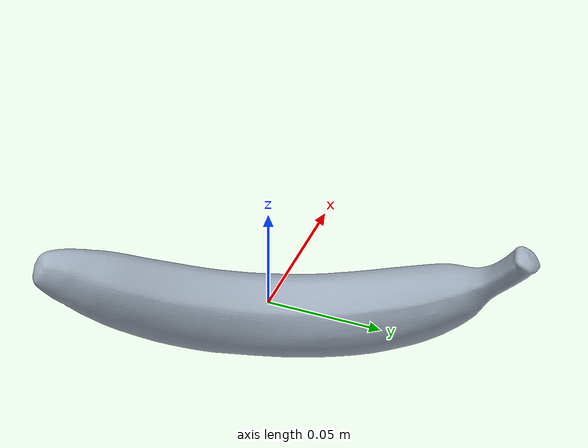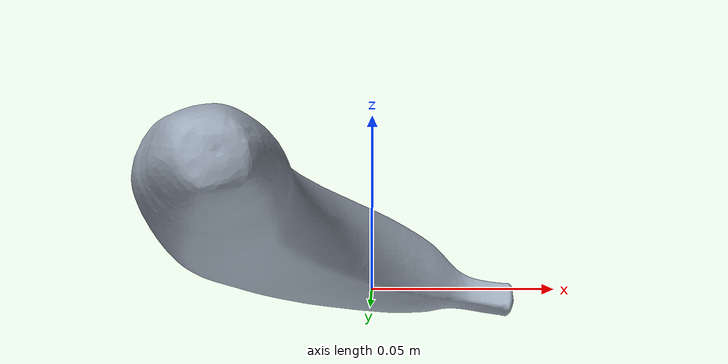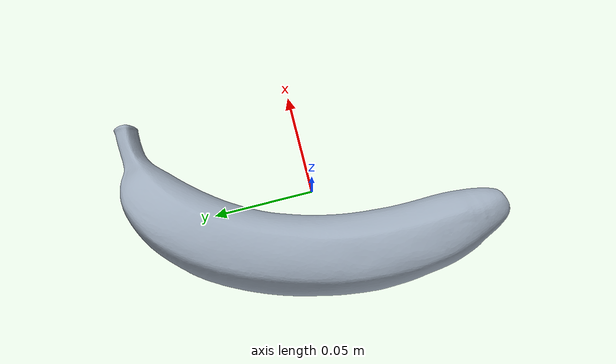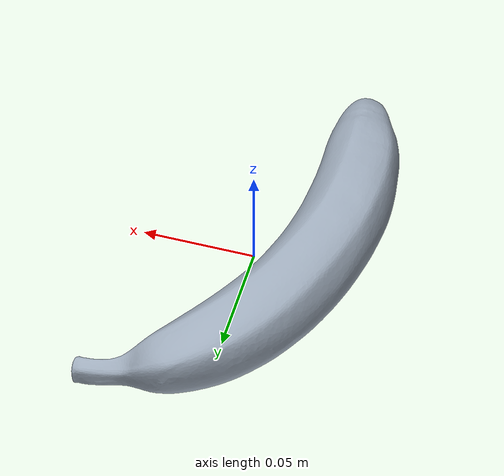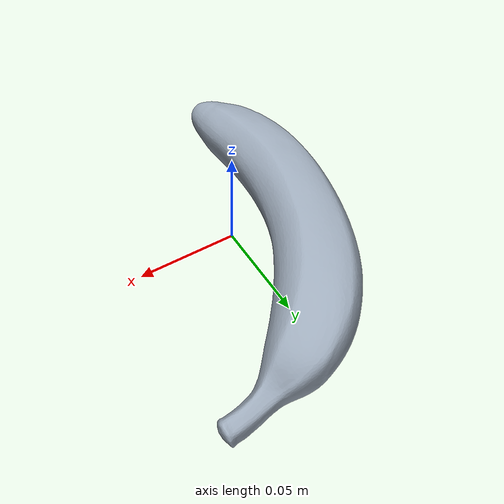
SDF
<?xml version="1.0"?>
<!-- Generated by generate_models.py. Benchmark mass and collision
     approximations are documented in physics_models.json. -->
<sdf version="1.7" xmlns:drake="http://drake.mit.edu">
  <model name="banana_controller"><link name="banana_base">
    <inertial><pose>-0.0214121435841 0.011416396273 0.0175338847291 0 0 0</pose>
      <mass>0.1</mass><inertia><ixx>0.000218451225384</ixx><iyy>4.51606692075e-05</iyy><izz>0.000248664185317</izz><ixy>-6.45465929511e-05</ixy><ixz>1.54600790921e-06</ixz><iyz>-1.29447596398e-06</iyz></inertia></inertial>
    <visual name="object_visual"><geometry><mesh><uri>banana_centered.obj</uri>
      </mesh></geometry><material><diffuse>0.62 0.67 0.73 1</diffuse></material></visual>
    <collision name="hull_00"><geometry><mesh>
      <uri>collision/banana_00.obj</uri><drake:declare_convex/></mesh></geometry>
      <drake:proximity_properties><drake:mu_static>0.3</drake:mu_static><drake:mu_dynamic>0.3</drake:mu_dynamic></drake:proximity_properties></collision>
    <collision name="hull_01"><geometry><mesh>
      <uri>collision/banana_01.obj</uri><drake:declare_convex/></mesh></geometry>
      <drake:proximity_properties><drake:mu_static>0.3</drake:mu_static><drake:mu_dynamic>0.3</drake:mu_dynamic></drake:proximity_properties></collision>
    <collision name="hull_02"><geometry><mesh>
      <uri>collision/banana_02.obj</uri><drake:declare_convex/></mesh></geometry>
      <drake:proximity_properties><drake:mu_static>0.3</drake:mu_static><drake:mu_dynamic>0.3</drake:mu_dynamic></drake:proximity_properties></collision>
    <collision name="hull_03"><geometry><mesh>
      <uri>collision/banana_03.obj</uri><drake:declare_convex/></mesh></geometry>
      <drake:proximity_properties><drake:mu_static>0.3</drake:mu_static><drake:mu_dynamic>0.3</drake:mu_dynamic></drake:proximity_properties></collision>
    <!-- Native contact wiring requires these three spheres LAST. -->
    <collision name="ground_witness_0"><pose>-0.030525 -0.083541 0.001 0 0 0</pose>
      <geometry><sphere><radius>0.001</radius></sphere></geometry>
      <drake:proximity_properties><drake:mu_static>0.3</drake:mu_static><drake:mu_dynamic>0.3</drake:mu_dynamic></drake:proximity_properties></collision>
    <collision name="ground_witness_1"><pose>0.054197 0.083024 0.001 0 0 0</pose>
      <geometry><sphere><radius>0.001</radius></sphere></geometry>
      <drake:proximity_properties><drake:mu_static>0.3</drake:mu_static><drake:mu_dynamic>0.3</drake:mu_dynamic></drake:proximity_properties></collision>
    <collision name="ground_witness_2"><pose>-0.03193 0.039963 0.001 0 0 0</pose>
      <geometry><sphere><radius>0.001</radius></sphere></geometry>
      <drake:proximity_properties><drake:mu_static>0.3</drake:mu_static><drake:mu_dynamic>0.3</drake:mu_dynamic></drake:proximity_properties></collision>
  </link></model>
</sdf>
